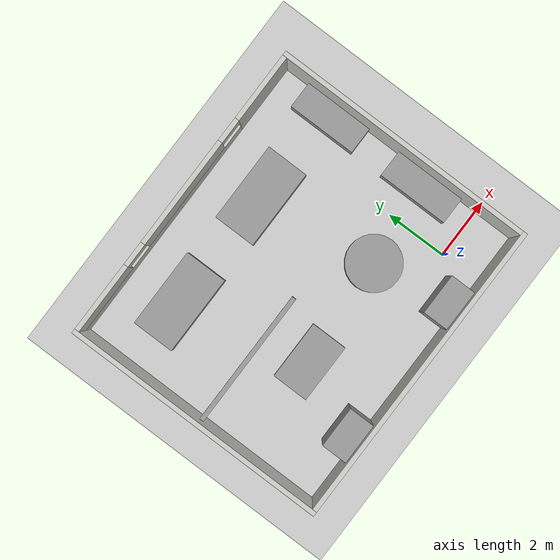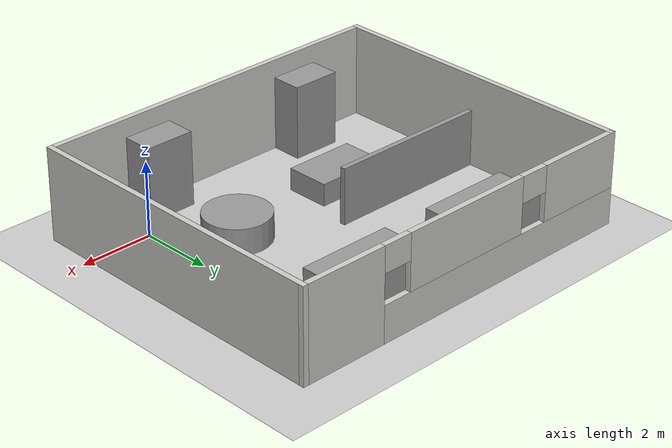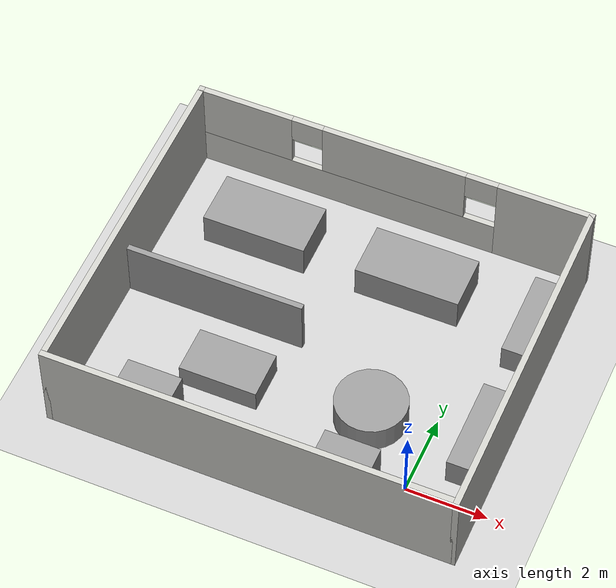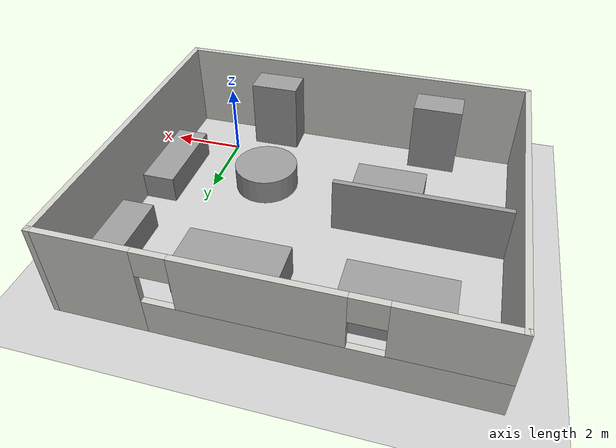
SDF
<sdf version="1.7">
 <world name="default">
  <light name="sun" type="directional">
   <pose>0 0 10 0 -0 0</pose>
   <diffuse>0.8 0.8 0.8 1</diffuse>
   <specular>0.2 0.2 0.2 1</specular>
   <attenuation>
    <range>1000</range>
    <constant>0.9</constant>
    <linear>0.01</linear>
    <quadratic>0.001</quadratic>
   </attenuation>
   <direction>-0.5 0.1 -0.9</direction>
   <spot><inner_angle>0</inner_angle><outer_angle>0</outer_angle><falloff>0</falloff></spot>
  </light>
  <model name="ground_plane">
   <static>1</static>
   <link name="link">
    <collision name="collision">
     <geometry><plane><normal>0 0 1</normal><size>100 100</size></plane></geometry>
     <surface><friction><ode><mu>100</mu><mu2>50</mu2></ode></friction></surface>
    </collision>
    <visual name="visual">
     <cast_shadows>0</cast_shadows>
     <geometry><plane><normal>0 0 1</normal><size>100 100</size></plane></geometry>
     <material>
      <script><uri>file://media/materials/scripts/gazebo.material</uri><name>Gazebo/Grey</name></script>
     </material>
    </visual>
   </link>
  </model>
  <gravity>0 0 -9.8</gravity>
  <magnetic_field>6e-06 2.3e-05 -4.2e-05</magnetic_field>
  <atmosphere type="adiabatic"/>
  <physics type="ode">
   <max_step_size>0.001</max_step_size>
   <real_time_factor>1</real_time_factor>
   <real_time_update_rate>1000</real_time_update_rate>
  </physics>
  <scene><ambient>0.4 0.4 0.4 1</ambient><background>0.7 0.7 0.7 1</background><shadows>1</shadows></scene>
  <audio><device>default</device></audio>
  <spherical_coordinates>
   <surface_model>EARTH_WGS84</surface_model>
   <latitude_deg>0</latitude_deg>
   <longitude_deg>0</longitude_deg>
   <elevation>0</elevation>
   <heading_deg>0</heading_deg>
  </spherical_coordinates>
  <model name="static_room">
   <pose>-3.30275 2.91315 0 0 -0 0</pose>
   <link name="Wall_10">
    <collision name="Wall_10_Collision">
     <geometry><box><size>8.704 0.15 2.5</size></box></geometry>
     <pose>0 0 1.25 0 -0 0</pose>
    </collision>
    <visual name="Wall_10_Visual">
     <pose>0 0 1.25 0 -0 0</pose>
     <geometry><box><size>8.704 0.15 2.5</size></box></geometry>
     <material>
      <script><uri>file://media/materials/scripts/gazebo.material</uri><name>Gazebo/CeilingTiled</name></script>
      <ambient>1 1 1 1</ambient>
     </material>
     <meta><layer>0</layer></meta>
    </visual>
    <pose>-5 0 0 0 -0 -1.5708</pose>
   </link>
   <link name="Wall_5">
    <collision name="Wall_5_Collision">
     <geometry><box><size>10.15 0.15 2.5</size></box></geometry>
     <pose>0 0 1.25 0 -0 0</pose>
    </collision>
    <visual name="Wall_5_Visual">
     <pose>0 0 1.25 0 -0 0</pose>
     <geometry><box><size>10.15 0.15 2.5</size></box></geometry>
     <material>
      <script><uri>file://media/materials/scripts/gazebo.material</uri><name>Gazebo/CeilingTiled</name></script>
      <ambient>1 1 1 1</ambient>
     </material>
     <meta><layer>0</layer></meta>
    </visual>
    <pose>0 -4.277 0 0 -0 0</pose>
   </link>
   <link name="Wall_6">
    <collision name="Wall_6_Collision">
     <geometry><box><size>8.704 0.15 2.5</size></box></geometry>
     <pose>0 0 1.25 0 -0 0</pose>
    </collision>
    <visual name="Wall_6_Visual">
     <pose>0 0 1.25 0 -0 0</pose>
     <geometry><box><size>8.704 0.15 2.5</size></box></geometry>
     <material>
      <script><uri>file://media/materials/scripts/gazebo.material</uri><name>Gazebo/CeilingTiled</name></script>
      <ambient>1 1 1 1</ambient>
     </material>
     <meta><layer>0</layer></meta>
    </visual>
    <pose>5 0 0 0 -0 1.5708</pose>
   </link>
   <link name="Wall_9">
    <pose>0 4.277 0 0 -0 3.14159</pose>
    <visual name="Wall_9_Visual_0">
     <pose>-3.87034 0 1.25 0 -0 0</pose>
     <geometry><box><size>2.40933 0.15 2.5</size></box></geometry>
     <material>
      <script><uri>file://media/materials/scripts/gazebo.material</uri><name>Gazebo/CeilingTiled</name></script>
      <ambient>1 1 1 1</ambient>
     </material>
     <meta><layer>0</layer></meta>
    </visual>
    <collision name="Wall_9_Collision_0">
     <geometry><box><size>2.40933 0.15 2.5</size></box></geometry>
     <pose>-3.87034 0 1.25 0 -0 0</pose>
    </collision>
    <visual name="Wall_9_Visual_1">
     <pose>1.20466 0 0.5 0 -0 0</pose>
     <geometry><box><size>7.74067 0.15 1</size></box></geometry>
     <material>
      <script><uri>file://media/materials/scripts/gazebo.material</uri><name>Gazebo/CeilingTiled</name></script>
      <ambient>1 1 1 1</ambient>
     </material>
     <meta><layer>0</layer></meta>
    </visual>
    <collision name="Wall_9_Collision_1">
     <geometry><box><size>7.74067 0.15 1</size></box></geometry>
     <pose>1.20466 0 0.5 0 -0 0</pose>
    </collision>
    <visual name="Wall_9_Visual_2">
     <pose>-0.033065 0 1.75 0 -0 0</pose>
     <geometry><box><size>3.66521 0.15 1.5</size></box></geometry>
     <material>
      <script><uri>file://media/materials/scripts/gazebo.material</uri><name>Gazebo/CeilingTiled</name></script>
      <ambient>1 1 1 1</ambient>
     </material>
     <meta><layer>0</layer></meta>
    </visual>
    <collision name="Wall_9_Collision_2">
     <geometry><box><size>3.66521 0.15 1.5</size></box></geometry>
     <pose>-0.033065 0 1.75 0 -0 0</pose>
    </collision>
    <visual name="Wall_9_Visual_3">
     <pose>3.83727 0 1.75 0 -0 0</pose>
     <geometry><box><size>2.47546 0.15 1.5</size></box></geometry>
     <material>
      <script><uri>file://media/materials/scripts/gazebo.material</uri><name>Gazebo/CeilingTiled</name></script>
      <ambient>1 1 1 1</ambient>
     </material>
     <meta><layer>0</layer></meta>
    </visual>
    <collision name="Wall_9_Collision_3">
     <geometry><box><size>2.47546 0.15 1.5</size></box></geometry>
     <pose>3.83727 0 1.75 0 -0 0</pose>
    </collision>
    <visual name="Wall_9_Visual_4">
     <pose>-2.26567 0 2.15 0 -0 0</pose>
     <geometry><box><size>0.8 0.15 0.7</size></box></geometry>
     <material>
      <script><uri>file://media/materials/scripts/gazebo.material</uri><name>Gazebo/CeilingTiled</name></script>
      <ambient>1 1 1 1</ambient>
     </material>
     <meta><layer>0</layer></meta>
    </visual>
    <collision name="Wall_9_Collision_4">
     <geometry><box><size>0.8 0.15 0.7</size></box></geometry>
     <pose>-2.26567 0 2.15 0 -0 0</pose>
    </collision>
    <visual name="Wall_9_Visual_5">
     <pose>2.19954 0 2.15 0 -0 0</pose>
     <geometry><box><size>0.8 0.15 0.7</size></box></geometry>
     <material>
      <script><uri>file://media/materials/scripts/gazebo.material</uri><name>Gazebo/CeilingTiled</name></script>
      <ambient>1 1 1 1</ambient>
     </material>
     <meta><layer>0</layer></meta>
    </visual>
    <collision name="Wall_9_Collision_5">
     <geometry><box><size>0.8 0.15 0.7</size></box></geometry>
     <pose>2.19954 0 2.15 0 -0 0</pose>
    </collision>
   </link>
   <static>1</static>
  </model>
  <model name="unit_box">
   <pose>1.18501 5.17441 0.368966 0 -0 0</pose>
   <link name="link">
    <inertial>
     <mass>1</mass>
     <inertia>
      <ixx>0.166667</ixx>
      <ixy>0</ixy>
      <ixz>0</ixz>
      <iyy>0.166667</iyy>
      <iyz>0</iyz>
      <izz>0.166667</izz>
     </inertia>
    </inertial>
    <collision name="collision"><geometry><box><size>0.876383 2.27219 0.736853</size></box></geometry></collision>
    <visual name="visual">
     <geometry><box><size>0.876383 2.27219 0.736853</size></box></geometry>
     <material>
      <script><name>Gazebo/Grey</name><uri>file://media/materials/scripts/gazebo.material</uri></script>
     </material>
    </visual>
   </link>
  </model>
  <model name="unit_box_clone">
   <pose>1.18317 1.76403 0.371276 0 -0 0</pose>
   <link name="link">
    <inertial>
     <mass>1</mass>
     <inertia>
      <ixx>0.166667</ixx>
      <ixy>0</ixy>
      <ixz>0</ixz>
      <iyy>0.166667</iyy>
      <iyz>0</iyz>
      <izz>0.166667</izz>
     </inertia>
    </inertial>
    <collision name="collision"><geometry><box><size>0.895404 2.35058 0.748327</size></box></geometry></collision>
    <visual name="visual">
     <geometry><box><size>0.895404 2.35058 0.748327</size></box></geometry>
     <material>
      <script><name>Gazebo/Grey</name><uri>file://media/materials/scripts/gazebo.material</uri></script>
     </material>
    </visual>
   </link>
  </model>
  <model name="unit_box_0">
   <pose>-1.11886 -0.883784 1.00144 0 -0 0</pose>
   <link name="link">
    <inertial>
     <mass>1</mass>
     <inertia>
      <ixx>0.166667</ixx>
      <ixy>0</ixy>
      <ixz>0</ixz>
      <iyy>0.166667</iyy>
      <iyz>0</iyz>
      <izz>0.166667</izz>
     </inertia>
    </inertial>
    <collision name="collision"><geometry><box><size>1.34811 0.84324 2.01311</size></box></geometry></collision>
    <visual name="visual">
     <geometry><box><size>1.34811 0.84324 2.01311</size></box></geometry>
     <material>
      <script><name>Gazebo/Grey</name><uri>file://media/materials/scripts/gazebo.material</uri></script>
     </material>
    </visual>
   </link>
  </model>
  <model name="unit_box_0_clone">
   <pose>-5.96507 -0.872811 1.00144 0 -0 0</pose>
   <link name="link">
    <inertial>
     <mass>1</mass>
     <inertia>
      <ixx>0.166667</ixx>
      <ixy>0</ixy>
      <ixz>0</ixz>
      <iyy>0.166667</iyy>
      <iyz>0</iyz>
      <izz>0.166667</izz>
     </inertia>
    </inertial>
    <collision name="collision"><geometry><box><size>1.34811 0.84324 2.01311</size></box></geometry></collision>
    <visual name="visual">
     <geometry><box><size>1.34811 0.84324 2.01311</size></box></geometry>
     <material>
      <script><name>Gazebo/Grey</name><uri>file://media/materials/scripts/gazebo.material</uri></script>
     </material>
    </visual>
   </link>
  </model>
  <model name="unit_cylinder">
   <pose>-1.48058 1.51412 0.345902 0 -0 0</pose>
   <link name="link">
    <inertial>
     <mass>1</mass>
     <inertia><ixx>0.145833</ixx><ixy>0</ixy><ixz>0</ixz><iyy>0.145833</iyy><iyz>0</iyz><izz>0.125</izz></inertia>
    </inertial>
    <collision name="collision">
     <geometry><cylinder><radius>0.88163</radius><length>0.709227</length></cylinder></geometry>
    </collision>
    <visual name="visual">
     <geometry><cylinder><radius>0.88163</radius><length>0.709227</length></cylinder></geometry>
     <material>
      <script><name>Gazebo/Grey</name><uri>file://media/materials/scripts/gazebo.material</uri></script>
     </material>
    </visual>
   </link>
  </model>
  <model name="unit_box_1_clone">
   <pose>-5.88919 5.43635 0.441765 0 -0 0</pose>
   <link name="link">
    <inertial>
     <mass>1</mass>
     <inertia>
      <ixx>0.166667</ixx>
      <ixy>0</ixy>
      <ixz>0</ixz>
      <iyy>0.166667</iyy>
      <iyz>0</iyz>
      <izz>0.166667</izz>
     </inertia>
    </inertial>
    <collision name="collision"><geometry><box><size>2.62367 1.38862 0.876045</size></box></geometry></collision>
    <visual name="visual">
     <geometry><box><size>2.62367 1.38862 0.876045</size></box></geometry>
     <material>
      <script><name>Gazebo/Grey</name><uri>file://media/materials/scripts/gazebo.material</uri></script>
     </material>
    </visual>
   </link>
  </model>
  <model name="unit_box_1_clone_clone">
   <pose>-1.9247 5.4069 0.441765 0 -0 0</pose>
   <link name="link">
    <inertial>
     <mass>1</mass>
     <inertia>
      <ixx>0.166667</ixx>
      <ixy>0</ixy>
      <ixz>0</ixz>
      <iyy>0.166667</iyy>
      <iyz>0</iyz>
      <izz>0.166667</izz>
     </inertia>
    </inertial>
    <collision name="collision"><geometry><box><size>2.62367 1.38862 0.876045</size></box></geometry></collision>
    <visual name="visual">
     <geometry><box><size>2.62367 1.38862 0.876045</size></box></geometry>
     <material>
      <script><name>Gazebo/Grey</name><uri>file://media/materials/scripts/gazebo.material</uri></script>
     </material>
    </visual>
   </link>
  </model>
  <model name="unit_box_1">
   <pose>-5.98604 2.78639 0.755155 0 -0 0</pose>
   <link name="link">
    <inertial>
     <mass>1</mass>
     <inertia>
      <ixx>0.166667</ixx>
      <ixy>0</ixy>
      <ixz>0</ixz>
      <iyy>0.166667</iyy>
      <iyz>0</iyz>
      <izz>0.166667</izz>
     </inertia>
    </inertial>
    <collision name="collision"><geometry><box><size>4.49831 0.144102 1.53946</size></box></geometry></collision>
    <visual name="visual">
     <geometry><box><size>4.49831 0.144102 1.53946</size></box></geometry>
     <material>
      <script><name>Gazebo/Grey</name><uri>file://media/materials/scripts/gazebo.material</uri></script>
     </material>
    </visual>
   </link>
  </model>
  <model name="unit_box_2">
   <pose>-4.98679 1.26076 0.306309 0 -0 0</pose>
   <link name="link">
    <inertial>
     <mass>1</mass>
     <inertia>
      <ixx>0.166667</ixx>
      <ixy>0</ixy>
      <ixz>0</ixz>
      <iyy>0.166667</iyy>
      <iyz>0</iyz>
      <izz>0.166667</izz>
     </inertia>
    </inertial>
    <collision name="collision"><geometry><box><size>1.95031 1.19637 0.607454</size></box></geometry></collision>
    <visual name="visual">
     <geometry><box><size>1.95031 1.19637 0.607454</size></box></geometry>
     <material>
      <script><name>Gazebo/Grey</name><uri>file://media/materials/scripts/gazebo.material</uri></script>
     </material>
    </visual>
   </link>
  </model>
 </world>
</sdf>
